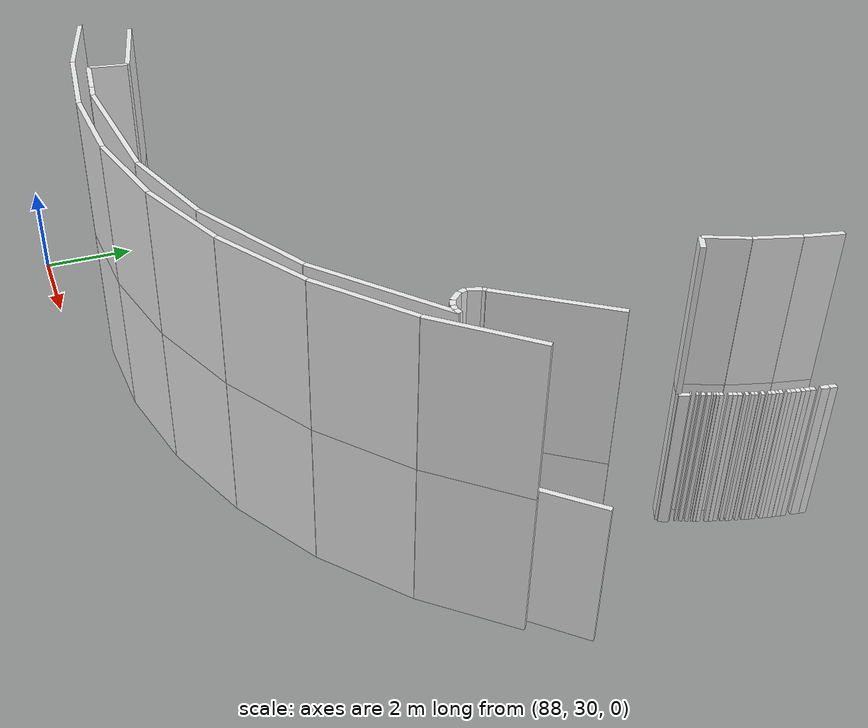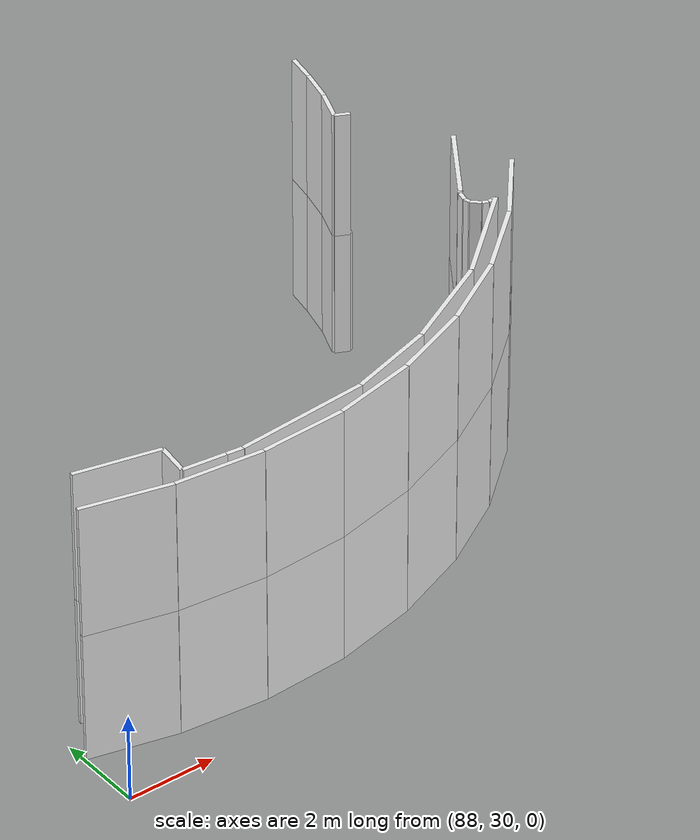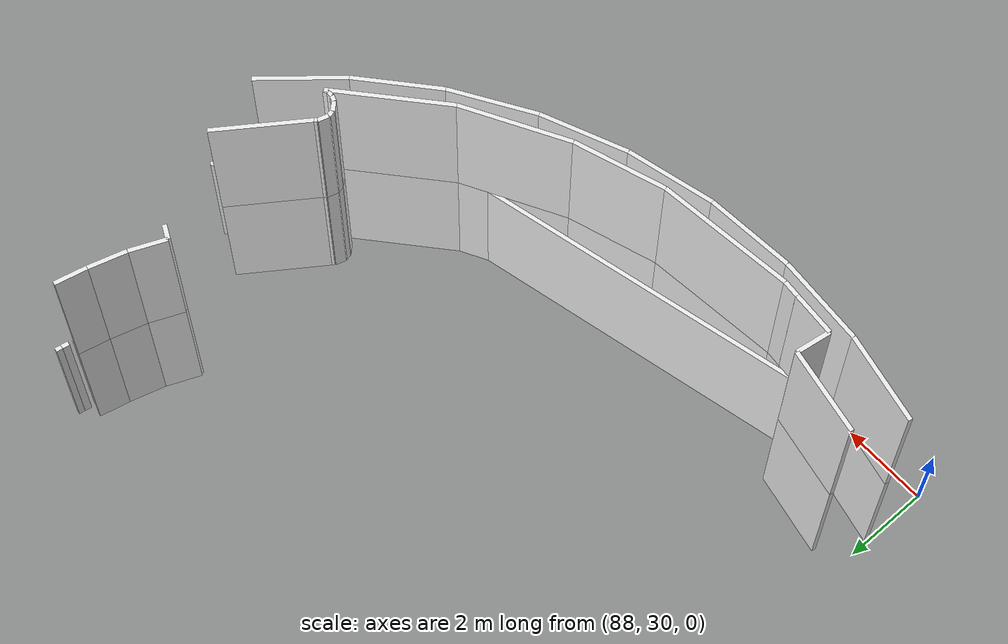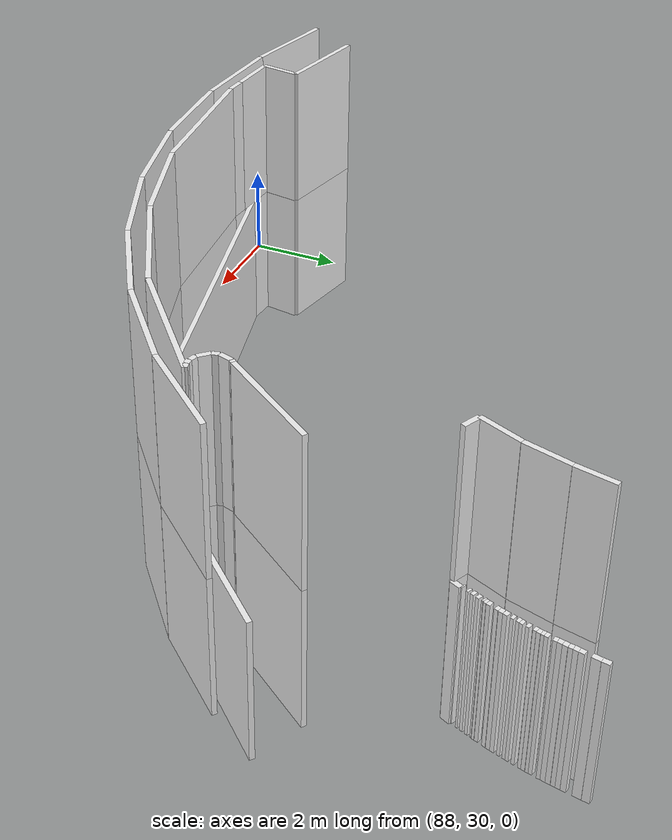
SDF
<sdf version="1.6">
 <world name="default">
  <model name="wall_100.9_39.7_1.5">
   <static>true</static>
   <pose>100.88500000000931 39.670000000158325 1.5 0 0 1.1071487177940904</pose>
   <link name="link">
    <visual name="visual">
     <geometry><box><size>0.022360679795822902 0.1 3</size></box></geometry>
     <material>
      <script><uri>file://media/materials/scripts/gazebo.material</uri><name>Gazebo/White</name></script>
     </material>
    </visual>
    <collision name="collision">
     <geometry><box><size>0.022360679795822902 0.1 3</size></box></geometry>
    </collision>
   </link>
  </model>
  <model name="wall_100.9_39.8_1.5">
   <static>true</static>
   <pose>100.92999999999302 39.77999999979511 1.5 0 0 1.1071487177940904</pose>
   <link name="link">
    <visual name="visual">
     <geometry><box><size>0.044721359591645804 0.1 3</size></box></geometry>
     <material>
      <script><uri>file://media/materials/scripts/gazebo.material</uri><name>Gazebo/White</name></script>
     </material>
    </visual>
    <collision name="collision">
     <geometry><box><size>0.044721359591645804 0.1 3</size></box></geometry>
    </collision>
   </link>
  </model>
  <model name="wall_101.0_39.9_1.5">
   <static>true</static>
   <pose>100.96499999999651 39.86999999987893 1.5 0 0 1.1071487185701927</pose>
   <link name="link">
    <visual name="visual">
     <geometry><box><size>0.06708203936143745 0.1 3</size></box></geometry>
     <material>
      <script><uri>file://media/materials/scripts/gazebo.material</uri><name>Gazebo/White</name></script>
     </material>
    </visual>
    <collision name="collision"><geometry><box><size>0.06708203936143745 0.1 3</size></box></geometry></collision>
   </link>
  </model>
  <model name="wall_101.0_40.0_1.5">
   <static>true</static>
   <pose>101.00500000000466 39.96999999997206 1.5 0 0 1.1071487177940904</pose>
   <link name="link">
    <visual name="visual">
     <geometry><box><size>0.0670820393874687 0.1 3</size></box></geometry>
     <material>
      <script><uri>file://media/materials/scripts/gazebo.material</uri><name>Gazebo/White</name></script>
     </material>
    </visual>
    <collision name="collision"><geometry><box><size>0.0670820393874687 0.1 3</size></box></geometry></collision>
   </link>
  </model>
  <model name="wall_101.0_40.1_1.5">
   <static>true</static>
   <pose>101.04000000000815 40.06499999994412 1.5 0 0 0.9827937281725927</pose>
   <link name="link">
    <visual name="visual">
     <geometry><box><size>0.03605551294965821 0.1 3</size></box></geometry>
     <material>
      <script><uri>file://media/materials/scripts/gazebo.material</uri><name>Gazebo/White</name></script>
     </material>
    </visual>
    <collision name="collision"><geometry><box><size>0.03605551294965821 0.1 3</size></box></geometry></collision>
   </link>
  </model>
  <model name="wall_101.1_40.1_1.5">
   <static>true</static>
   <pose>101.05999999999767 40.10499999998137 1.5 0 0 1.1902899480768032</pose>
   <link name="link">
    <visual name="visual">
     <geometry><box><size>0.05385164790532047 0.1 3</size></box></geometry>
     <material>
      <script><uri>file://media/materials/scripts/gazebo.material</uri><name>Gazebo/White</name></script>
     </material>
    </visual>
    <collision name="collision"><geometry><box><size>0.05385164790532047 0.1 3</size></box></geometry></collision>
   </link>
  </model>
  <model name="wall_101.1_40.2_1.5">
   <static>true</static>
   <pose>101.0800000000163 40.16500000003725 1.5 0 0 1.2924966686683914</pose>
   <link name="link">
    <visual name="visual">
     <geometry><box><size>0.07280109918447873 0.1 3</size></box></geometry>
     <material>
      <script><uri>file://media/materials/scripts/gazebo.material</uri><name>Gazebo/White</name></script>
     </material>
    </visual>
    <collision name="collision"><geometry><box><size>0.07280109918447873 0.1 3</size></box></geometry></collision>
   </link>
  </model>
  <model name="wall_101.1_40.3_1.5">
   <static>true</static>
   <pose>101.13500000000931 40.31499999994412 1.5 0 0 1.1659045417141096</pose>
   <link name="link">
    <visual name="visual">
     <geometry><box><size>0.07615773134357162 0.1 3</size></box></geometry>
     <material>
      <script><uri>file://media/materials/scripts/gazebo.material</uri><name>Gazebo/White</name></script>
     </material>
    </visual>
    <collision name="collision"><geometry><box><size>0.07615773134357162 0.1 3</size></box></geometry></collision>
   </link>
  </model>
  <model name="wall_101.2_40.4_1.5">
   <static>true</static>
   <pose>101.16000000000349 40.390000000130385 1.5 0 0 1.3258176643528286</pose>
   <link name="link">
    <visual name="visual">
     <geometry><box><size>0.08246211257503461 0.1 3</size></box></geometry>
     <material>
      <script><uri>file://media/materials/scripts/gazebo.material</uri><name>Gazebo/White</name></script>
     </material>
    </visual>
    <collision name="collision"><geometry><box><size>0.08246211257503461 0.1 3</size></box></geometry></collision>
   </link>
  </model>
  <model name="wall_101.2_40.5_1.5">
   <static>true</static>
   <pose>101.18499999999767 40.46999999997206 1.5 0 0 1.2120256546106478</pose>
   <link name="link">
    <visual name="visual">
     <geometry><box><size>0.0854400370967353 0.1 3</size></box></geometry>
     <material>
      <script><uri>file://media/materials/scripts/gazebo.material</uri><name>Gazebo/White</name></script>
     </material>
    </visual>
    <collision name="collision"><geometry><box><size>0.0854400370967353 0.1 3</size></box></geometry></collision>
   </link>
  </model>
  <model name="wall_101.2_40.6_1.5">
   <static>true</static>
   <pose>101.22000000000116 40.59000000008382 1.5 0 0 1.2490457732713693</pose>
   <link name="link">
    <visual name="visual">
     <geometry><box><size>0.06324555324386272 0.1 3</size></box></geometry>
     <material>
      <script><uri>file://media/materials/scripts/gazebo.material</uri><name>Gazebo/White</name></script>
     </material>
    </visual>
    <collision name="collision"><geometry><box><size>0.06324555324386272 0.1 3</size></box></geometry></collision>
   </link>
  </model>
  <model name="wall_101.2_40.7_1.5">
   <static>true</static>
   <pose>101.25 40.69000000017695 1.5 0 0 1.2490457723982544</pose>
   <link name="link">
    <visual name="visual">
     <geometry><box><size>0.06324555326226959 0.1 3</size></box></geometry>
     <material>
      <script><uri>file://media/materials/scripts/gazebo.material</uri><name>Gazebo/White</name></script>
     </material>
    </visual>
    <collision name="collision"><geometry><box><size>0.06324555326226959 0.1 3</size></box></geometry></collision>
   </link>
  </model>
  <model name="wall_101.3_40.8_1.5">
   <static>true</static>
   <pose>101.27000000001863 40.75 1.5 0 0 1.249045770069948</pose>
   <link name="link">
    <visual name="visual">
     <geometry><box><size>0.06324555282050451 0.1 3</size></box></geometry>
     <material>
      <script><uri>file://media/materials/scripts/gazebo.material</uri><name>Gazebo/White</name></script>
     </material>
    </visual>
    <collision name="collision"><geometry><box><size>0.06324555282050451 0.1 3</size></box></geometry></collision>
   </link>
  </model>
  <model name="wall_101.3_40.9_1.5">
   <static>true</static>
   <pose>101.29999999998836 40.860000000102445 1.5 0 0 1.2490457723982544</pose>
   <link name="link">
    <visual name="visual">
     <geometry><box><size>0.06324555326226959 0.1 3</size></box></geometry>
     <material>
      <script><uri>file://media/materials/scripts/gazebo.material</uri><name>Gazebo/White</name></script>
     </material>
    </visual>
    <collision name="collision"><geometry><box><size>0.06324555326226959 0.1 3</size></box></geometry></collision>
   </link>
  </model>
  <model name="wall_101.3_41.0_1.5">
   <static>true</static>
   <pose>101.3300000000163 40.97999999998137 1.5 0 0 1.249045770069948</pose>
   <link name="link">
    <visual name="visual">
     <geometry><box><size>0.06324555282050451 0.1 3</size></box></geometry>
     <material>
      <script><uri>file://media/materials/scripts/gazebo.material</uri><name>Gazebo/White</name></script>
     </material>
    </visual>
    <collision name="collision"><geometry><box><size>0.06324555282050451 0.1 3</size></box></geometry></collision>
   </link>
  </model>
  <model name="wall_101.4_41.0_1.5">
   <static>true</static>
   <pose>101.35000000000582 41.044999999925494 1.5 0 0 1.2924966694371718</pose>
   <link name="link">
    <visual name="visual">
     <geometry><box><size>0.07280109916848786 0.1 3</size></box></geometry>
     <material>
      <script><uri>file://media/materials/scripts/gazebo.material</uri><name>Gazebo/White</name></script>
     </material>
    </visual>
    <collision name="collision"><geometry><box><size>0.07280109916848786 0.1 3</size></box></geometry></collision>
   </link>
  </model>
  <model name="wall_101.4_41.1_1.5">
   <static>true</static>
   <pose>101.36499999999069 41.110000000102445 1.5 0 0 1.4056476493802699</pose>
   <link name="link">
    <visual name="visual">
     <geometry><box><size>0.060827625359632334 0.1 3</size></box></geometry>
     <material>
      <script><uri>file://media/materials/scripts/gazebo.material</uri><name>Gazebo/White</name></script>
     </material>
    </visual>
    <collision name="collision">
     <geometry><box><size>0.060827625359632334 0.1 3</size></box></geometry>
    </collision>
   </link>
  </model>
  <model name="wall_101.4_41.2_1.5">
   <static>true</static>
   <pose>101.38000000000466 41.175000000046566 1.5 0 0 1.292496666911179</pose>
   <link name="link">
    <visual name="visual">
     <geometry><box><size>0.07280109873673425 0.1 3</size></box></geometry>
     <material>
      <script><uri>file://media/materials/scripts/gazebo.material</uri><name>Gazebo/White</name></script>
     </material>
    </visual>
    <collision name="collision"><geometry><box><size>0.07280109873673425 0.1 3</size></box></geometry></collision>
   </link>
  </model>
  <model name="wall_101.4_41.3_1.5">
   <static>true</static>
   <pose>101.41499999997905 41.31499999994412 1.5 0 0 1.428899272656394</pose>
   <link name="link">
    <visual name="visual">
     <geometry><box><size>0.07071067841499978 0.1 3</size></box></geometry>
     <material>
      <script><uri>file://media/materials/scripts/gazebo.material</uri><name>Gazebo/White</name></script>
     </material>
    </visual>
    <collision name="collision"><geometry><box><size>0.07071067841499978 0.1 3</size></box></geometry></collision>
   </link>
  </model>
  <model name="wall_101.4_41.4_1.5">
   <static>true</static>
   <pose>101.42999999999302 41.39500000001863 1.5 0 0 1.3521273803731177</pose>
   <link name="link">
    <visual name="visual">
     <geometry><box><size>0.0921954444315063 0.1 3</size></box></geometry>
     <material>
      <script><uri>file://media/materials/scripts/gazebo.material</uri><name>Gazebo/White</name></script>
     </material>
    </visual>
    <collision name="collision"><geometry><box><size>0.0921954444315063 0.1 3</size></box></geometry></collision>
   </link>
  </model>
  <model name="wall_101.5_41.5_1.5">
   <static>true</static>
   <pose>101.45000000001164 41.484999999869615 1.5 0 0 1.3521273803731177</pose>
   <link name="link">
    <visual name="visual">
     <geometry><box><size>0.0921954444315063 0.1 3</size></box></geometry>
     <material>
      <script><uri>file://media/materials/scripts/gazebo.material</uri><name>Gazebo/White</name></script>
     </material>
    </visual>
    <collision name="collision"><geometry><box><size>0.0921954444315063 0.1 3</size></box></geometry></collision>
   </link>
  </model>
  <model name="wall_101.5_41.6_1.5">
   <static>true</static>
   <pose>101.46499999999651 41.56999999983236 1.5 0 0 1.4464413329645371</pose>
   <link name="link">
    <visual name="visual">
     <geometry><box><size>0.08062257755085135 0.1 3</size></box></geometry>
     <material>
      <script><uri>file://media/materials/scripts/gazebo.material</uri><name>Gazebo/White</name></script>
     </material>
    </visual>
    <collision name="collision"><geometry><box><size>0.08062257755085135 0.1 3</size></box></geometry></collision>
   </link>
  </model>
  <model name="wall_101.5_41.7_1.5">
   <static>true</static>
   <pose>101.47999999998137 41.65500000002794 1.5 0 0 1.3521273814687915</pose>
   <link name="link">
    <visual name="visual">
     <geometry><box><size>0.09219544488607884 0.1 3</size></box></geometry>
     <material>
      <script><uri>file://media/materials/scripts/gazebo.material</uri><name>Gazebo/White</name></script>
     </material>
    </visual>
    <collision name="collision"><geometry><box><size>0.09219544488607884 0.1 3</size></box></geometry></collision>
   </link>
  </model>
  <model name="wall_101.5_41.8_1.5">
   <static>true</static>
   <pose>101.5 41.75 1.5 0 0 1.3734007660495133</pose>
   <link name="link">
    <visual name="visual">
     <geometry><box><size>0.10198038991021388 0.1 3</size></box></geometry>
     <material>
      <script><uri>file://media/materials/scripts/gazebo.material</uri><name>Gazebo/White</name></script>
     </material>
    </visual>
    <collision name="collision"><geometry><box><size>0.10198038991021388 0.1 3</size></box></geometry></collision>
   </link>
  </model>
  <model name="wall_101.5_42.0_1.5">
   <static>true</static>
   <pose>101.53500000000349 41.97999999998137 1.5 0 0 1.3854483771506443</pose>
   <link name="link">
    <visual name="visual">
     <geometry><box><size>0.16278820610187839 0.1 3</size></box></geometry>
     <material>
      <script><uri>file://media/materials/scripts/gazebo.material</uri><name>Gazebo/White</name></script>
     </material>
    </visual>
    <collision name="collision"><geometry><box><size>0.16278820610187839 0.1 3</size></box></geometry></collision>
   </link>
  </model>
  <model name="wall_101.6_42.1_1.5">
   <static>true</static>
   <pose>101.55999999999767 42.13000000012107 1.5 0 0 1.4288992721907328</pose>
   <link name="link">
    <visual name="visual">
     <geometry><box><size>0.1414213563690184 0.1 3</size></box></geometry>
     <material>
      <script><uri>file://media/materials/scripts/gazebo.material</uri><name>Gazebo/White</name></script>
     </material>
    </visual>
    <collision name="collision"><geometry><box><size>0.1414213563690184 0.1 3</size></box></geometry></collision>
   </link>
  </model>
  <model name="wall_100.9_39.6_1.5">
   <static>true</static>
   <pose>100.86999999999534 39.550000000046566 1.5 0 0 1.1525719977557387</pose>
   <link name="link">
    <visual name="visual">
     <geometry><box><size>0.19697715617209063 0.1 3</size></box></geometry>
     <material>
      <script><uri>file://media/materials/scripts/gazebo.material</uri><name>Gazebo/White</name></script>
     </material>
    </visual>
    <collision name="collision"><geometry><box><size>0.19697715617209063 0.1 3</size></box></geometry></collision>
   </link>
  </model>
  <model name="wall_101.1_41.5_1.5">
   <static>true</static>
   <pose>101.14499999998952 41.54000000003725 1.5 0 0 -1.7818896599154248</pose>
   <link name="link">
    <visual name="visual">
     <geometry><box><size>0.7158910533386299 0.1 3</size></box></geometry>
     <material>
      <script><uri>file://media/materials/scripts/gazebo.material</uri><name>Gazebo/White</name></script>
     </material>
    </visual>
    <collision name="collision"><geometry><box><size>0.7158910533386299 0.1 3</size></box></geometry></collision>
   </link>
  </model>
  <model name="wall_101.0_40.8_1.5">
   <static>true</static>
   <pose>100.9550000000163 40.78000000002794 1.5 0 0 -1.8442573139172422</pose>
   <link name="link">
    <visual name="visual">
     <geometry><box><size>0.8516454659754289 0.1 3</size></box></geometry>
     <material>
      <script><uri>file://media/materials/scripts/gazebo.material</uri><name>Gazebo/White</name></script>
     </material>
    </visual>
    <collision name="collision"><geometry><box><size>0.8516454659754289 0.1 3</size></box></geometry></collision>
   </link>
  </model>
  <model name="wall_100.7_40.0_1.5">
   <static>true</static>
   <pose>100.68000000002212 39.98999999999069 1.5 0 0 -1.9693187723551735</pose>
   <link name="link">
    <visual name="visual">
     <geometry><box><size>0.824621125349411 0.1 3</size></box></geometry>
     <material>
      <script><uri>file://media/materials/scripts/gazebo.material</uri><name>Gazebo/White</name></script>
     </material>
    </visual>
    <collision name="collision"><geometry><box><size>0.824621125349411 0.1 3</size></box></geometry></collision>
   </link>
  </model>
  <model name="wall_100.7_39.5_1.5">
   <static>true</static>
   <pose>100.67500000001746 39.53499999991618 1.5 0 0 -0.4506613258401467</pose>
   <link name="link">
    <visual name="visual">
     <geometry><box><size>0.34438350711179067 0.1 3</size></box></geometry>
     <material>
      <script><uri>file://media/materials/scripts/gazebo.material</uri><name>Gazebo/White</name></script>
     </material>
    </visual>
    <collision name="collision"><geometry><box><size>0.34438350711179067 0.1 3</size></box></geometry></collision>
   </link>
  </model>
  <model name="wall_101.4_36.6_1.5">
   <static>true</static>
   <pose>101.36499999999069 36.574999999953434 1.5 0 0 -2.1856810573733596</pose>
   <link name="link">
    <visual name="visual">
     <geometry><box><size>2.166887168282174 0.1 3</size></box></geometry>
     <material>
      <script><uri>file://media/materials/scripts/gazebo.material</uri><name>Gazebo/White</name></script>
     </material>
    </visual>
    <collision name="collision"><geometry><box><size>2.166887168282174 0.1 3</size></box></geometry></collision>
   </link>
  </model>
  <model name="wall_100.7_35.7_1.5">
   <static>true</static>
   <pose>100.71499999999651 35.66500000003725 1.5 0 0 -2.3561944919385747</pose>
   <link name="link">
    <visual name="visual">
     <geometry><box><size>0.07071067797871404 0.1 3</size></box></geometry>
     <material>
      <script><uri>file://media/materials/scripts/gazebo.material</uri><name>Gazebo/White</name></script>
     </material>
    </visual>
    <collision name="collision"><geometry><box><size>0.07071067797871404 0.1 3</size></box></geometry></collision>
   </link>
  </model>
  <model name="wall_100.7_35.5_1.5">
   <static>true</static>
   <pose>100.65499999999884 35.52000000001863 1.5 0 0 -1.854590435779707</pose>
   <link name="link">
    <visual name="visual">
     <geometry><box><size>0.25000000021653246 0.1 3</size></box></geometry>
     <material>
      <script><uri>file://media/materials/scripts/gazebo.material</uri><name>Gazebo/White</name></script>
     </material>
    </visual>
    <collision name="collision"><geometry><box><size>0.25000000021653246 0.1 3</size></box></geometry></collision>
   </link>
  </model>
  <model name="wall_100.6_35.3_1.5">
   <static>true</static>
   <pose>100.63500000000931 35.33499999996275 1.5 0 0 -1.3439974783485995</pose>
   <link name="link">
    <visual name="visual">
     <geometry><box><size>0.13341664053864913 0.1 3</size></box></geometry>
     <material>
      <script><uri>file://media/materials/scripts/gazebo.material</uri><name>Gazebo/White</name></script>
     </material>
    </visual>
    <collision name="collision"><geometry><box><size>0.13341664053864913 0.1 3</size></box></geometry></collision>
   </link>
  </model>
  <model name="wall_100.7_35.2_1.5">
   <static>true</static>
   <pose>100.73500000001513 35.17999999993481 1.5 0 0 -0.8139618217489675</pose>
   <link name="link">
    <visual name="visual">
     <geometry><box><size>0.24758836817348331 0.1 3</size></box></geometry>
     <material>
      <script><uri>file://media/materials/scripts/gazebo.material</uri><name>Gazebo/White</name></script>
     </material>
    </visual>
    <collision name="collision"><geometry><box><size>0.24758836817348331 0.1 3</size></box></geometry></collision>
   </link>
  </model>
  <model name="wall_100.9_35.1_1.5">
   <static>true</static>
   <pose>100.88500000000931 35.06499999994412 1.5 0 0 -0.36717383255805336</pose>
   <link name="link">
    <visual name="visual">
     <geometry><box><size>0.13928388270932235 0.1 3</size></box></geometry>
     <material>
      <script><uri>file://media/materials/scripts/gazebo.material</uri><name>Gazebo/White</name></script>
     </material>
    </visual>
    <collision name="collision"><geometry><box><size>0.13928388270932235 0.1 3</size></box></geometry></collision>
   </link>
  </model>
  <model name="wall_101.0_35.0_1.5">
   <static>true</static>
   <pose>101.00500000000466 35.04000000003725 1.5 0 0 0.0</pose>
   <link name="link">
    <visual name="visual">
     <geometry><box><size>0.10999999998603016 0.1 3</size></box></geometry>
     <material>
      <script><uri>file://media/materials/scripts/gazebo.material</uri><name>Gazebo/White</name></script>
     </material>
    </visual>
    <collision name="collision"><geometry><box><size>0.10999999998603016 0.1 3</size></box></geometry></collision>
   </link>
  </model>
  <model name="wall_101.1_35.1_1.5">
   <static>true</static>
   <pose>101.11499999999069 35.05499999993481 1.5 0 0 0.2662520474494707</pose>
   <link name="link">
    <visual name="visual">
     <geometry><box><size>0.11401754244252582 0.1 3</size></box></geometry>
     <material>
      <script><uri>file://media/materials/scripts/gazebo.material</uri><name>Gazebo/White</name></script>
     </material>
    </visual>
    <collision name="collision"><geometry><box><size>0.11401754244252582 0.1 3</size></box></geometry></collision>
   </link>
  </model>
  <model name="wall_100.1_34.2_1.5">
   <static>true</static>
   <pose>100.125 34.17999999993481 1.5 0 0 -2.4361271769906225</pose>
   <link name="link">
    <visual name="visual">
     <geometry><box><size>2.7452686570050546 0.1 3</size></box></geometry>
     <material>
      <script><uri>file://media/materials/scripts/gazebo.material</uri><name>Gazebo/White</name></script>
     </material>
    </visual>
    <collision name="collision"><geometry><box><size>2.7452686570050546 0.1 3</size></box></geometry></collision>
   </link>
  </model>
  <model name="wall_98.0_32.7_1.5">
   <static>true</static>
   <pose>97.96499999999651 32.699999999953434 1.5 0 0 -2.654899479832602</pose>
   <link name="link">
    <visual name="visual">
     <geometry><box><size>2.522954617224051 0.1 3</size></box></geometry>
     <material>
      <script><uri>file://media/materials/scripts/gazebo.material</uri><name>Gazebo/White</name></script>
     </material>
    </visual>
    <collision name="collision"><geometry><box><size>2.522954617224051 0.1 3</size></box></geometry></collision>
   </link>
  </model>
  <model name="wall_95.8_31.8_1.5">
   <static>true</static>
   <pose>95.83499999999185 31.794999999925494 1.5 0 0 -2.8406724192753643</pose>
   <link name="link">
    <visual name="visual">
     <geometry><box><size>2.125511703034424 0.1 3</size></box></geometry>
     <material>
      <script><uri>file://media/materials/scripts/gazebo.material</uri><name>Gazebo/White</name></script>
     </material>
    </visual>
    <collision name="collision"><geometry><box><size>2.125511703034424 0.1 3</size></box></geometry></collision>
   </link>
  </model>
  <model name="wall_93.3_31.3_1.5">
   <static>true</static>
   <pose>93.27499999999418 31.34499999997206 1.5 0 0 -3.0544353790302465</pose>
   <link name="link">
    <visual name="visual">
     <geometry><box><size>3.101773686162215 0.1 3</size></box></geometry>
     <material>
      <script><uri>file://media/materials/scripts/gazebo.material</uri><name>Gazebo/White</name></script>
     </material>
    </visual>
    <collision name="collision"><geometry><box><size>3.101773686162215 0.1 3</size></box></geometry></collision>
   </link>
  </model>
  <model name="wall_91.5_31.2_1.5">
   <static>true</static>
   <pose>91.5449999999837 31.229999999981374 1.5 0 0 3.0339027826561074</pose>
   <link name="link">
    <visual name="visual">
     <geometry><box><size>0.3721558813179423 0.1 3</size></box></geometry>
     <material>
      <script><uri>file://media/materials/scripts/gazebo.material</uri><name>Gazebo/White</name></script>
     </material>
    </visual>
    <collision name="collision"><geometry><box><size>0.3721558813179423 0.1 3</size></box></geometry></collision>
   </link>
  </model>
  <model name="wall_90.9_31.3_1.5">
   <static>true</static>
   <pose>90.86999999999534 31.300000000046566 1.5 0 0 3.039903801730743</pose>
   <link name="link">
    <visual name="visual">
     <geometry><box><size>0.985088828472904 0.1 3</size></box></geometry>
     <material>
      <script><uri>file://media/materials/scripts/gazebo.material</uri><name>Gazebo/White</name></script>
     </material>
    </visual>
    <collision name="collision"><geometry><box><size>0.985088828472904 0.1 3</size></box></geometry></collision>
   </link>
  </model>
  <model name="wall_90.4_31.7_1.5">
   <static>true</static>
   <pose>90.44000000000233 31.739999999990687 1.5 0 0 1.4181469983659853</pose>
   <link name="link">
    <visual name="visual">
     <geometry><box><size>0.7891767860747378 0.1 3</size></box></geometry>
     <material>
      <script><uri>file://media/materials/scripts/gazebo.material</uri><name>Gazebo/White</name></script>
     </material>
    </visual>
    <collision name="collision"><geometry><box><size>0.7891767860747378 0.1 3</size></box></geometry></collision>
   </link>
  </model>
  <model name="wall_89.6_32.3_1.5">
   <static>true</static>
   <pose>89.56500000000233 32.33499999996275 1.5 0 0 2.9257565612511374</pose>
   <link name="link">
    <visual name="visual">
     <geometry><box><size>1.914418971935029 0.1 3</size></box></geometry>
     <material>
      <script><uri>file://media/materials/scripts/gazebo.material</uri><name>Gazebo/White</name></script>
     </material>
    </visual>
    <collision name="collision"><geometry><box><size>1.914418971935029 0.1 3</size></box></geometry></collision>
   </link>
  </model>
  <model name="wall_89.0_31.3_1.5">
   <static>true</static>
   <pose>89.02499999999418 31.31499999994412 1.5 0 0 -0.23651453623268864</pose>
   <link name="link">
    <visual name="visual">
     <geometry><box><size>2.0058414692592925 0.1 3</size></box></geometry>
     <material>
      <script><uri>file://media/materials/scripts/gazebo.material</uri><name>Gazebo/White</name></script>
     </material>
    </visual>
    <collision name="collision"><geometry><box><size>2.0058414692592925 0.1 3</size></box></geometry></collision>
   </link>
  </model>
  <model name="wall_91.0_31.0_1.5">
   <static>true</static>
   <pose>90.99499999999534 30.985000000102445 1.5 0 0 -0.09518884171524361</pose>
   <link name="link">
    <visual name="visual">
     <geometry><box><size>1.9990497742531823 0.1 3</size></box></geometry>
     <material>
      <script><uri>file://media/materials/scripts/gazebo.material</uri><name>Gazebo/White</name></script>
     </material>
    </visual>
    <collision name="collision"><geometry><box><size>1.9990497742531823 0.1 3</size></box></geometry></collision>
   </link>
  </model>
  <model name="wall_93.0_30.9_1.5">
   <static>true</static>
   <pose>92.98499999998603 30.945000000065193 1.5 0 0 0.05522018623431974</pose>
   <link name="link">
    <visual name="visual">
     <geometry><box><size>1.9930378822125405 0.1 3</size></box></geometry>
     <material>
      <script><uri>file://media/materials/scripts/gazebo.material</uri><name>Gazebo/White</name></script>
     </material>
    </visual>
    <collision name="collision"><geometry><box><size>1.9930378822125405 0.1 3</size></box></geometry></collision>
   </link>
  </model>
  <model name="wall_95.0_31.2_1.5">
   <static>true</static>
   <pose>94.95999999999185 31.21999999997206 1.5 0 0 0.2208287696999214</pose>
   <link name="link">
    <visual name="visual">
     <geometry><box><size>2.008780724726561 0.1 3</size></box></geometry>
     <material>
      <script><uri>file://media/materials/scripts/gazebo.material</uri><name>Gazebo/White</name></script>
     </material>
    </visual>
    <collision name="collision"><geometry><box><size>2.008780724726561 0.1 3</size></box></geometry></collision>
   </link>
  </model>
  <model name="wall_96.9_31.8_1.5">
   <static>true</static>
   <pose>96.86999999999534 31.81000000005588 1.5 0 0 0.378651091777806</pose>
   <link name="link">
    <visual name="visual">
     <geometry><box><size>2.001799190797828 0.1 3</size></box></geometry>
     <material>
      <script><uri>file://media/materials/scripts/gazebo.material</uri><name>Gazebo/White</name></script>
     </material>
    </visual>
    <collision name="collision"><geometry><box><size>2.001799190797828 0.1 3</size></box></geometry></collision>
   </link>
  </model>
  <model name="wall_98.7_32.7_1.5">
   <static>true</static>
   <pose>98.66000000000349 32.69000000017695 1.5 0 0 0.5352737480904504</pose>
   <link name="link">
    <visual name="visual">
     <geometry><box><size>1.9996999775321596 0.1 3</size></box></geometry>
     <material>
      <script><uri>file://media/materials/scripts/gazebo.material</uri><name>Gazebo/White</name></script>
     </material>
    </visual>
    <collision name="collision"><geometry><box><size>1.9996999775321596 0.1 3</size></box></geometry></collision>
   </link>
  </model>
  <model name="wall_100.3_33.8_1.5">
   <static>true</static>
   <pose>100.28500000000349 33.84500000020489 1.5 0 0 0.7004963699717071</pose>
   <link name="link">
    <visual name="visual">
     <geometry><box><size>2.0012496096198227 0.1 3</size></box></geometry>
     <material>
      <script><uri>file://media/materials/scripts/gazebo.material</uri><name>Gazebo/White</name></script>
     </material>
    </visual>
    <collision name="collision"><geometry><box><size>2.0012496096198227 0.1 3</size></box></geometry></collision>
   </link>
  </model>
  <model name="wall_101.7_35.2_1.5">
   <static>true</static>
   <pose>101.7049999999872 35.24500000011176 1.5 0 0 0.8562015958949653</pose>
   <link name="link">
    <visual name="visual">
     <geometry><box><size>1.999049774097403 0.1 3</size></box></geometry>
     <material>
      <script><uri>file://media/materials/scripts/gazebo.material</uri><name>Gazebo/White</name></script>
     </material>
    </visual>
    <collision name="collision"><geometry><box><size>1.999049774097403 0.1 3</size></box></geometry></collision>
   </link>
  </model>
  <model name="wall_101.2_35.1_1.5">
   <static>true</static>
   <pose>101.25 35.09500000020489 1.5 0 0 -2.3107086442837126</pose>
   <link name="link">
    <visual name="visual">
     <geometry><box><size>5.131832031548245 0.1 3</size></box></geometry>
     <material>
      <script><uri>file://media/materials/scripts/gazebo.material</uri><name>Gazebo/White</name></script>
     </material>
    </visual>
    <collision name="collision"><geometry><box><size>5.131832031548245 0.1 3</size></box></geometry></collision>
   </link>
  </model>
  <model name="wall_94.8_32.1_1.5">
   <static>true</static>
   <pose>94.76000000000931 32.140000000130385 1.5 0 0 -2.9224788678767726</pose>
   <link name="link">
    <visual name="visual">
     <geometry><box><size>9.753194348562348 0.1 3</size></box></geometry>
     <material>
      <script><uri>file://media/materials/scripts/gazebo.material</uri><name>Gazebo/White</name></script>
     </material>
    </visual>
    <collision name="collision"><geometry><box><size>9.753194348562348 0.1 3</size></box></geometry></collision>
   </link>
  </model>
  <model name="wall_101.1_41.5_4.5">
   <static>true</static>
   <pose>101.14499999998952 41.54000000003725 4.5 0 0 -1.7818896599154248</pose>
   <link name="link">
    <visual name="visual">
     <geometry><box><size>0.7158910533386299 0.1 3</size></box></geometry>
     <material>
      <script><uri>file://media/materials/scripts/gazebo.material</uri><name>Gazebo/White</name></script>
     </material>
    </visual>
    <collision name="collision"><geometry><box><size>0.7158910533386299 0.1 3</size></box></geometry></collision>
   </link>
  </model>
  <model name="wall_101.0_40.8_4.5">
   <static>true</static>
   <pose>100.9550000000163 40.78000000002794 4.5 0 0 -1.8442573139172422</pose>
   <link name="link">
    <visual name="visual">
     <geometry><box><size>0.8516454659754289 0.1 3</size></box></geometry>
     <material>
      <script><uri>file://media/materials/scripts/gazebo.material</uri><name>Gazebo/White</name></script>
     </material>
    </visual>
    <collision name="collision"><geometry><box><size>0.8516454659754289 0.1 3</size></box></geometry></collision>
   </link>
  </model>
  <model name="wall_100.7_40.0_4.5">
   <static>true</static>
   <pose>100.68000000002212 39.98999999999069 4.5 0 0 -1.9693187723551735</pose>
   <link name="link">
    <visual name="visual">
     <geometry><box><size>0.824621125349411 0.1 3</size></box></geometry>
     <material>
      <script><uri>file://media/materials/scripts/gazebo.material</uri><name>Gazebo/White</name></script>
     </material>
    </visual>
    <collision name="collision"><geometry><box><size>0.824621125349411 0.1 3</size></box></geometry></collision>
   </link>
  </model>
  <model name="wall_100.7_39.5_4.5">
   <static>true</static>
   <pose>100.67500000001746 39.53499999991618 4.5 0 0 -0.4506613258401467</pose>
   <link name="link">
    <visual name="visual">
     <geometry><box><size>0.34438350711179067 0.1 3</size></box></geometry>
     <material>
      <script><uri>file://media/materials/scripts/gazebo.material</uri><name>Gazebo/White</name></script>
     </material>
    </visual>
    <collision name="collision"><geometry><box><size>0.34438350711179067 0.1 3</size></box></geometry></collision>
   </link>
  </model>
  <model name="wall_101.4_36.6_4.5">
   <static>true</static>
   <pose>101.36499999999069 36.574999999953434 4.5 0 0 -2.1856810573733596</pose>
   <link name="link">
    <visual name="visual">
     <geometry><box><size>2.166887168282174 0.1 3</size></box></geometry>
     <material>
      <script><uri>file://media/materials/scripts/gazebo.material</uri><name>Gazebo/White</name></script>
     </material>
    </visual>
    <collision name="collision"><geometry><box><size>2.166887168282174 0.1 3</size></box></geometry></collision>
   </link>
  </model>
  <model name="wall_100.7_35.7_4.5">
   <static>true</static>
   <pose>100.71499999999651 35.66500000003725 4.5 0 0 -2.3561944919385747</pose>
   <link name="link">
    <visual name="visual">
     <geometry><box><size>0.07071067797871404 0.1 3</size></box></geometry>
     <material>
      <script><uri>file://media/materials/scripts/gazebo.material</uri><name>Gazebo/White</name></script>
     </material>
    </visual>
    <collision name="collision"><geometry><box><size>0.07071067797871404 0.1 3</size></box></geometry></collision>
   </link>
  </model>
  <model name="wall_100.7_35.5_4.5">
   <static>true</static>
   <pose>100.65499999999884 35.52000000001863 4.5 0 0 -1.854590435779707</pose>
   <link name="link">
    <visual name="visual">
     <geometry><box><size>0.25000000021653246 0.1 3</size></box></geometry>
     <material>
      <script><uri>file://media/materials/scripts/gazebo.material</uri><name>Gazebo/White</name></script>
     </material>
    </visual>
    <collision name="collision"><geometry><box><size>0.25000000021653246 0.1 3</size></box></geometry></collision>
   </link>
  </model>
  <model name="wall_100.6_35.3_4.5">
   <static>true</static>
   <pose>100.63500000000931 35.33499999996275 4.5 0 0 -1.3439974783485995</pose>
   <link name="link">
    <visual name="visual">
     <geometry><box><size>0.13341664053864913 0.1 3</size></box></geometry>
     <material>
      <script><uri>file://media/materials/scripts/gazebo.material</uri><name>Gazebo/White</name></script>
     </material>
    </visual>
    <collision name="collision"><geometry><box><size>0.13341664053864913 0.1 3</size></box></geometry></collision>
   </link>
  </model>
  <model name="wall_100.7_35.2_4.5">
   <static>true</static>
   <pose>100.73500000001513 35.17999999993481 4.5 0 0 -0.8139618217489675</pose>
   <link name="link">
    <visual name="visual">
     <geometry><box><size>0.24758836817348331 0.1 3</size></box></geometry>
     <material>
      <script><uri>file://media/materials/scripts/gazebo.material</uri><name>Gazebo/White</name></script>
     </material>
    </visual>
    <collision name="collision"><geometry><box><size>0.24758836817348331 0.1 3</size></box></geometry></collision>
   </link>
  </model>
  <model name="wall_100.9_35.1_4.5">
   <static>true</static>
   <pose>100.88500000000931 35.06499999994412 4.5 0 0 -0.36717383255805336</pose>
   <link name="link">
    <visual name="visual">
     <geometry><box><size>0.13928388270932235 0.1 3</size></box></geometry>
     <material>
      <script><uri>file://media/materials/scripts/gazebo.material</uri><name>Gazebo/White</name></script>
     </material>
    </visual>
    <collision name="collision"><geometry><box><size>0.13928388270932235 0.1 3</size></box></geometry></collision>
   </link>
  </model>
  <model name="wall_101.0_35.0_4.5">
   <static>true</static>
   <pose>101.00500000000466 35.04000000003725 4.5 0 0 0.0</pose>
   <link name="link">
    <visual name="visual">
     <geometry><box><size>0.10999999998603016 0.1 3</size></box></geometry>
     <material>
      <script><uri>file://media/materials/scripts/gazebo.material</uri><name>Gazebo/White</name></script>
     </material>
    </visual>
    <collision name="collision"><geometry><box><size>0.10999999998603016 0.1 3</size></box></geometry></collision>
   </link>
  </model>
  <model name="wall_101.1_35.1_4.5">
   <static>true</static>
   <pose>101.11499999999069 35.05499999993481 4.5 0 0 0.2662520474494707</pose>
   <link name="link">
    <visual name="visual">
     <geometry><box><size>0.11401754244252582 0.1 3</size></box></geometry>
     <material>
      <script><uri>file://media/materials/scripts/gazebo.material</uri><name>Gazebo/White</name></script>
     </material>
    </visual>
    <collision name="collision"><geometry><box><size>0.11401754244252582 0.1 3</size></box></geometry></collision>
   </link>
  </model>
  <model name="wall_100.1_34.2_4.5">
   <static>true</static>
   <pose>100.125 34.17999999993481 4.5 0 0 -2.4361271769906225</pose>
   <link name="link">
    <visual name="visual">
     <geometry><box><size>2.7452686570050546 0.1 3</size></box></geometry>
     <material>
      <script><uri>file://media/materials/scripts/gazebo.material</uri><name>Gazebo/White</name></script>
     </material>
    </visual>
    <collision name="collision"><geometry><box><size>2.7452686570050546 0.1 3</size></box></geometry></collision>
   </link>
  </model>
  <model name="wall_98.0_32.7_4.5">
   <static>true</static>
   <pose>97.96499999999651 32.699999999953434 4.5 0 0 -2.654899479832602</pose>
   <link name="link">
    <visual name="visual">
     <geometry><box><size>2.522954617224051 0.1 3</size></box></geometry>
     <material>
      <script><uri>file://media/materials/scripts/gazebo.material</uri><name>Gazebo/White</name></script>
     </material>
    </visual>
    <collision name="collision"><geometry><box><size>2.522954617224051 0.1 3</size></box></geometry></collision>
   </link>
  </model>
  <model name="wall_95.8_31.8_4.5">
   <static>true</static>
   <pose>95.83499999999185 31.794999999925494 4.5 0 0 -2.8406724192753643</pose>
   <link name="link">
    <visual name="visual">
     <geometry><box><size>2.125511703034424 0.1 3</size></box></geometry>
     <material>
      <script><uri>file://media/materials/scripts/gazebo.material</uri><name>Gazebo/White</name></script>
     </material>
    </visual>
    <collision name="collision"><geometry><box><size>2.125511703034424 0.1 3</size></box></geometry></collision>
   </link>
  </model>
  <model name="wall_93.3_31.3_4.5">
   <static>true</static>
   <pose>93.27499999999418 31.34499999997206 4.5 0 0 -3.0544353790302465</pose>
   <link name="link">
    <visual name="visual">
     <geometry><box><size>3.101773686162215 0.1 3</size></box></geometry>
     <material>
      <script><uri>file://media/materials/scripts/gazebo.material</uri><name>Gazebo/White</name></script>
     </material>
    </visual>
    <collision name="collision"><geometry><box><size>3.101773686162215 0.1 3</size></box></geometry></collision>
   </link>
  </model>
  <model name="wall_91.5_31.2_4.5">
   <static>true</static>
   <pose>91.5449999999837 31.229999999981374 4.5 0 0 3.0339027826561074</pose>
   <link name="link">
    <visual name="visual">
     <geometry><box><size>0.3721558813179423 0.1 3</size></box></geometry>
     <material>
      <script><uri>file://media/materials/scripts/gazebo.material</uri><name>Gazebo/White</name></script>
     </material>
    </visual>
    <collision name="collision"><geometry><box><size>0.3721558813179423 0.1 3</size></box></geometry></collision>
   </link>
  </model>
  <model name="wall_90.9_31.3_4.5">
   <static>true</static>
   <pose>90.86999999999534 31.300000000046566 4.5 0 0 3.039903801730743</pose>
   <link name="link">
    <visual name="visual">
     <geometry><box><size>0.985088828472904 0.1 3</size></box></geometry>
     <material>
      <script><uri>file://media/materials/scripts/gazebo.material</uri><name>Gazebo/White</name></script>
     </material>
    </visual>
    <collision name="collision"><geometry><box><size>0.985088828472904 0.1 3</size></box></geometry></collision>
   </link>
  </model>
  <model name="wall_90.4_31.7_4.5">
   <static>true</static>
   <pose>90.44000000000233 31.739999999990687 4.5 0 0 1.4181469983659853</pose>
   <link name="link">
    <visual name="visual">
     <geometry><box><size>0.7891767860747378 0.1 3</size></box></geometry>
     <material>
      <script><uri>file://media/materials/scripts/gazebo.material</uri><name>Gazebo/White</name></script>
     </material>
    </visual>
    <collision name="collision"><geometry><box><size>0.7891767860747378 0.1 3</size></box></geometry></collision>
   </link>
  </model>
  <model name="wall_89.6_32.3_4.5">
   <static>true</static>
   <pose>89.56500000000233 32.33499999996275 4.5 0 0 2.9257565612511374</pose>
   <link name="link">
    <visual name="visual">
     <geometry><box><size>1.914418971935029 0.1 3</size></box></geometry>
     <material>
      <script><uri>file://media/materials/scripts/gazebo.material</uri><name>Gazebo/White</name></script>
     </material>
    </visual>
    <collision name="collision"><geometry><box><size>1.914418971935029 0.1 3</size></box></geometry></collision>
   </link>
  </model>
  <model name="wall_89.0_31.3_4.5">
   <static>true</static>
   <pose>89.02499999999418 31.31499999994412 4.5 0 0 -0.23651453623268864</pose>
   <link name="link">
    <visual name="visual">
     <geometry><box><size>2.0058414692592925 0.1 3</size></box></geometry>
     <material>
      <script><uri>file://media/materials/scripts/gazebo.material</uri><name>Gazebo/White</name></script>
     </material>
    </visual>
    <collision name="collision"><geometry><box><size>2.0058414692592925 0.1 3</size></box></geometry></collision>
   </link>
  </model>
  <model name="wall_91.0_31.0_4.5">
   <static>true</static>
   <pose>90.99499999999534 30.985000000102445 4.5 0 0 -0.09518884171524361</pose>
   <link name="link">
    <visual name="visual">
     <geometry><box><size>1.9990497742531823 0.1 3</size></box></geometry>
     <material>
      <script><uri>file://media/materials/scripts/gazebo.material</uri><name>Gazebo/White</name></script>
     </material>
    </visual>
    <collision name="collision"><geometry><box><size>1.9990497742531823 0.1 3</size></box></geometry></collision>
   </link>
  </model>
  <model name="wall_93.0_30.9_4.5">
   <static>true</static>
   <pose>92.98499999998603 30.945000000065193 4.5 0 0 0.05522018623431974</pose>
   <link name="link">
    <visual name="visual">
     <geometry><box><size>1.9930378822125405 0.1 3</size></box></geometry>
     <material>
      <script><uri>file://media/materials/scripts/gazebo.material</uri><name>Gazebo/White</name></script>
     </material>
    </visual>
    <collision name="collision"><geometry><box><size>1.9930378822125405 0.1 3</size></box></geometry></collision>
   </link>
  </model>
  <model name="wall_95.0_31.2_4.5">
   <static>true</static>
   <pose>94.95999999999185 31.21999999997206 4.5 0 0 0.2208287696999214</pose>
   <link name="link">
    <visual name="visual">
     <geometry><box><size>2.008780724726561 0.1 3</size></box></geometry>
     <material>
      <script><uri>file://media/materials/scripts/gazebo.material</uri><name>Gazebo/White</name></script>
     </material>
    </visual>
    <collision name="collision"><geometry><box><size>2.008780724726561 0.1 3</size></box></geometry></collision>
   </link>
  </model>
  <model name="wall_96.9_31.8_4.5">
   <static>true</static>
   <pose>96.86999999999534 31.81000000005588 4.5 0 0 0.378651091777806</pose>
   <link name="link">
    <visual name="visual">
     <geometry><box><size>2.001799190797828 0.1 3</size></box></geometry>
     <material>
      <script><uri>file://media/materials/scripts/gazebo.material</uri><name>Gazebo/White</name></script>
     </material>
    </visual>
    <collision name="collision"><geometry><box><size>2.001799190797828 0.1 3</size></box></geometry></collision>
   </link>
  </model>
  <model name="wall_98.7_32.7_4.5">
   <static>true</static>
   <pose>98.66000000000349 32.69000000017695 4.5 0 0 0.5352737480904504</pose>
   <link name="link">
    <visual name="visual">
     <geometry><box><size>1.9996999775321596 0.1 3</size></box></geometry>
     <material>
      <script><uri>file://media/materials/scripts/gazebo.material</uri><name>Gazebo/White</name></script>
     </material>
    </visual>
    <collision name="collision"><geometry><box><size>1.9996999775321596 0.1 3</size></box></geometry></collision>
   </link>
  </model>
  <model name="wall_100.3_33.8_4.5">
   <static>true</static>
   <pose>100.28500000000349 33.84500000020489 4.5 0 0 0.7004963699717071</pose>
   <link name="link">
    <visual name="visual">
     <geometry><box><size>2.0012496096198227 0.1 3</size></box></geometry>
     <material>
      <script><uri>file://media/materials/scripts/gazebo.material</uri><name>Gazebo/White</name></script>
     </material>
    </visual>
    <collision name="collision"><geometry><box><size>2.0012496096198227 0.1 3</size></box></geometry></collision>
   </link>
  </model>
  <model name="wall_101.7_35.2_4.5">
   <static>true</static>
   <pose>101.7049999999872 35.24500000011176 4.5 0 0 0.8562015958949653</pose>
   <link name="link">
    <visual name="visual">
     <geometry><box><size>1.999049774097403 0.1 3</size></box></geometry>
     <material>
      <script><uri>file://media/materials/scripts/gazebo.material</uri><name>Gazebo/White</name></script>
     </material>
    </visual>
    <collision name="collision"><geometry><box><size>1.999049774097403 0.1 3</size></box></geometry></collision>
   </link>
  </model>
 </world>
</sdf>
